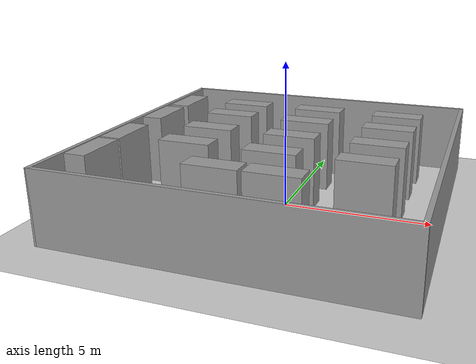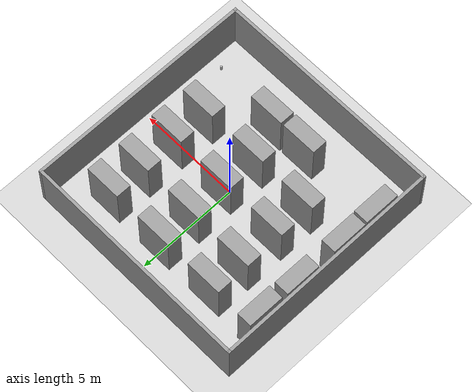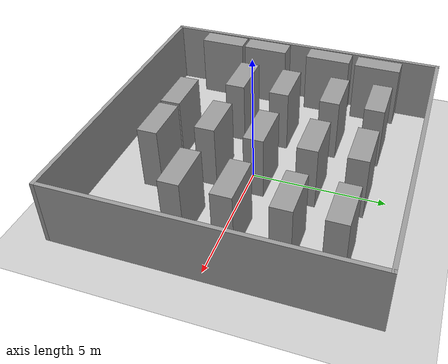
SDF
<sdf version="1.6">
 <world name="default">
  <light name="sun" type="directional">
   <pose>0 0 10 0 -0 0</pose>
   <diffuse>0.8 0.8 0.8 1</diffuse>
   <specular>0.1 0.1 0.1 1</specular>
   <attenuation>
    <range>1000</range>
    <constant>0.9</constant>
    <linear>0.01</linear>
    <quadratic>0.001</quadratic>
   </attenuation>
   <direction>-0.5 0.5 -1</direction>
  </light>
  <model name="ground_plane">
   <static>1</static>
   <link name="link">
    <collision name="collision">
     <geometry><plane><normal>0 0 1</normal><size>100 100</size></plane></geometry>
     <surface><friction><ode><mu>100</mu><mu2>50</mu2></ode></friction></surface>
    </collision>
    <visual name="visual">
     <cast_shadows>0</cast_shadows>
     <geometry><plane><normal>0 0 1</normal><size>100 100</size></plane></geometry>
     <material>
      <script><uri>file://media/materials/scripts/gazebo.material</uri><name>Gazebo/Grey</name></script>
     </material>
    </visual>
   </link>
  </model>
  <gravity>0 0 -9.8</gravity>
  <magnetic_field>6e-06 2.3e-05 -4.2e-05</magnetic_field>
  <atmosphere type="adiabatic"/>
  <physics name="default_physics" default="0" type="ode">
   <max_step_size>0.001</max_step_size>
   <real_time_factor>1</real_time_factor>
   <real_time_update_rate>1000</real_time_update_rate>
  </physics>
  <scene><ambient>0.4 0.4 0.4 1</ambient><background>0.7 0.7 0.7 1</background><shadows>1</shadows></scene>
  <spherical_coordinates>
   <surface_model>EARTH_WGS84</surface_model>
   <latitude_deg>0</latitude_deg>
   <longitude_deg>0</longitude_deg>
   <elevation>0</elevation>
   <heading_deg>0</heading_deg>
  </spherical_coordinates>
  <model name="C205_strict">
   <pose>-0.338529 0.180785 0 0 -0 0</pose>
   <link name="Wall_14">
    <collision name="Wall_14_Collision">
     <geometry><box><size>11.4 0.15 2.5</size></box></geometry>
     <pose>0 0 1.25 0 -0 0</pose>
    </collision>
    <visual name="Wall_14_Visual">
     <pose>0 0 1.25 0 -0 0</pose>
     <geometry><box><size>11.4 0.15 2.5</size></box></geometry>
     <material>
      <script><uri>file://media/materials/scripts/gazebo.material</uri><name>Gazebo/Grey</name></script>
      <ambient>1 1 1 1</ambient>
     </material>
    </visual>
    <pose>5.625 0 0 0 0 -1.5708</pose>
   </link>
   <link name="Wall_16">
    <collision name="Wall_16_Collision">
     <geometry><box><size>11.4 0.15 2.5</size></box></geometry>
     <pose>0 0 1.25 0 -0 0</pose>
    </collision>
    <visual name="Wall_16_Visual">
     <pose>0 0 1.25 0 -0 0</pose>
     <geometry><box><size>11.4 0.15 2.5</size></box></geometry>
     <material>
      <script><uri>file://media/materials/scripts/gazebo.material</uri><name>Gazebo/Grey</name></script>
      <ambient>1 1 1 1</ambient>
     </material>
    </visual>
    <pose>0 5.625 0 0 -0 3.14159</pose>
   </link>
   <link name="Wall_4">
    <collision name="Wall_4_Collision">
     <geometry><box><size>11.4 0.15 2.5</size></box></geometry>
     <pose>0 0 1.25 0 -0 0</pose>
    </collision>
    <visual name="Wall_4_Visual">
     <pose>0 0 1.25 0 -0 0</pose>
     <geometry><box><size>11.4 0.15 2.5</size></box></geometry>
     <material>
      <script><uri>file://media/materials/scripts/gazebo.material</uri><name>Gazebo/Grey</name></script>
      <ambient>1 1 1 1</ambient>
     </material>
    </visual>
    <pose>-5.625 0 0 0 -0 1.5708</pose>
   </link>
   <link name="Wall_9">
    <collision name="Wall_9_Collision">
     <geometry><box><size>11.4 0.15 2.5</size></box></geometry>
     <pose>0 0 1.25 0 -0 0</pose>
    </collision>
    <visual name="Wall_9_Visual">
     <pose>0 0 1.25 0 -0 0</pose>
     <geometry><box><size>11.4 0.15 2.5</size></box></geometry>
     <material>
      <script><uri>file://media/materials/scripts/gazebo.material</uri><name>Gazebo/Grey</name></script>
      <ambient>1 1 1 1</ambient>
     </material>
    </visual>
    <pose>0 -5.625 0 0 -0 0</pose>
   </link>
   <static>1</static>
  </model>
  <model name="C205_desk_0">
   <pose>3.10034 3.98146 0 0 -0 0</pose>
   <link name="Wall_18">
    <collision name="Wall_18_Collision">
     <geometry><box><size>1.8 0.75 2.5</size></box></geometry>
     <pose>0 0 1.25 0 -0 0</pose>
    </collision>
    <visual name="Wall_18_Visual">
     <pose>0 0 1.25 0 -0 0</pose>
     <geometry><box><size>1.8 0.75 2.5</size></box></geometry>
     <material>
      <script><uri>file://media/materials/scripts/gazebo.material</uri><name>Gazebo/Grey</name></script>
      <ambient>1 1 1 1</ambient>
     </material>
    </visual>
   </link>
   <static>1</static>
  </model>
  <model name="C205_desk_0_clone">
   <pose>3.08249 2.2509 0 0 -0 0</pose>
   <link name="Wall_18">
    <collision name="Wall_18_Collision">
     <geometry><box><size>1.8 0.75 2.5</size></box></geometry>
     <pose>0 0 1.25 0 -0 0</pose>
    </collision>
    <visual name="Wall_18_Visual">
     <pose>0 0 1.25 0 -0 0</pose>
     <geometry><box><size>1.8 0.75 2.5</size></box></geometry>
     <material>
      <script><uri>file://media/materials/scripts/gazebo.material</uri><name>Gazebo/Grey</name></script>
      <ambient>1 1 1 1</ambient>
     </material>
    </visual>
   </link>
   <static>1</static>
  </model>
  <model name="C205_desk_0_clone_0">
   <pose>3.10552 0.334193 0 0 -0 0</pose>
   <link name="Wall_18">
    <collision name="Wall_18_Collision">
     <geometry><box><size>1.8 0.75 2.5</size></box></geometry>
     <pose>0 0 1.25 0 -0 0</pose>
    </collision>
    <visual name="Wall_18_Visual">
     <pose>0 0 1.25 0 -0 0</pose>
     <geometry><box><size>1.8 0.75 2.5</size></box></geometry>
     <material>
      <script><uri>file://media/materials/scripts/gazebo.material</uri><name>Gazebo/Grey</name></script>
      <ambient>1 1 1 1</ambient>
     </material>
    </visual>
   </link>
   <static>1</static>
  </model>
  <model name="C205_desk_0_clone_1">
   <pose>3.07463 -1.44968 0 0 -0 0</pose>
   <link name="Wall_18">
    <collision name="Wall_18_Collision">
     <geometry><box><size>1.8 0.75 2.5</size></box></geometry>
     <pose>0 0 1.25 0 -0 0</pose>
    </collision>
    <visual name="Wall_18_Visual">
     <pose>0 0 1.25 0 -0 0</pose>
     <geometry><box><size>1.8 0.75 2.5</size></box></geometry>
     <material>
      <script><uri>file://media/materials/scripts/gazebo.material</uri><name>Gazebo/Grey</name></script>
      <ambient>1 1 1 1</ambient>
     </material>
    </visual>
   </link>
   <static>1</static>
  </model>
  <model name="C205_desk_0_clone_2">
   <pose>0.052321 3.97932 0 0 -0 0</pose>
   <link name="Wall_18">
    <collision name="Wall_18_Collision">
     <geometry><box><size>1.8 0.75 2.5</size></box></geometry>
     <pose>0 0 1.25 0 -0 0</pose>
    </collision>
    <visual name="Wall_18_Visual">
     <pose>0 0 1.25 0 -0 0</pose>
     <geometry><box><size>1.8 0.75 2.5</size></box></geometry>
     <material>
      <script><uri>file://media/materials/scripts/gazebo.material</uri><name>Gazebo/Grey</name></script>
      <ambient>1 1 1 1</ambient>
     </material>
    </visual>
   </link>
   <static>1</static>
  </model>
  <model name="C205_desk_0_clone_3">
   <pose>0.061092 2.2489 0 0 -0 0</pose>
   <link name="Wall_18">
    <collision name="Wall_18_Collision">
     <geometry><box><size>1.8 0.75 2.5</size></box></geometry>
     <pose>0 0 1.25 0 -0 0</pose>
    </collision>
    <visual name="Wall_18_Visual">
     <pose>0 0 1.25 0 -0 0</pose>
     <geometry><box><size>1.8 0.75 2.5</size></box></geometry>
     <material>
      <script><uri>file://media/materials/scripts/gazebo.material</uri><name>Gazebo/Grey</name></script>
      <ambient>1 1 1 1</ambient>
     </material>
    </visual>
   </link>
   <static>1</static>
  </model>
  <model name="C205_desk_0_clone_4">
   <pose>0.11067 0.345636 0 0 -0 0</pose>
   <link name="Wall_18">
    <collision name="Wall_18_Collision">
     <geometry><box><size>1.8 0.75 2.5</size></box></geometry>
     <pose>0 0 1.25 0 -0 0</pose>
    </collision>
    <visual name="Wall_18_Visual">
     <pose>0 0 1.25 0 -0 0</pose>
     <geometry><box><size>1.8 0.75 2.5</size></box></geometry>
     <material>
      <script><uri>file://media/materials/scripts/gazebo.material</uri><name>Gazebo/Grey</name></script>
      <ambient>1 1 1 1</ambient>
     </material>
    </visual>
   </link>
   <static>1</static>
  </model>
  <model name="C205_desk_0_clone_5">
   <pose>0.066675 -1.47823 0 0 -0 0</pose>
   <link name="Wall_18">
    <collision name="Wall_18_Collision">
     <geometry><box><size>1.8 0.75 2.5</size></box></geometry>
     <pose>0 0 1.25 0 -0 0</pose>
    </collision>
    <visual name="Wall_18_Visual">
     <pose>0 0 1.25 0 -0 0</pose>
     <geometry><box><size>1.8 0.75 2.5</size></box></geometry>
     <material>
      <script><uri>file://media/materials/scripts/gazebo.material</uri><name>Gazebo/Grey</name></script>
      <ambient>1 1 1 1</ambient>
     </material>
    </visual>
   </link>
   <static>1</static>
  </model>
  <model name="C205_desk_0_clone_6">
   <pose>-2.92908 3.96421 0 0 -0 0</pose>
   <link name="Wall_18">
    <collision name="Wall_18_Collision">
     <geometry><box><size>1.8 0.75 2.5</size></box></geometry>
     <pose>0 0 1.25 0 -0 0</pose>
    </collision>
    <visual name="Wall_18_Visual">
     <pose>0 0 1.25 0 -0 0</pose>
     <geometry><box><size>1.8 0.75 2.5</size></box></geometry>
     <material>
      <script><uri>file://media/materials/scripts/gazebo.material</uri><name>Gazebo/Grey</name></script>
      <ambient>1 1 1 1</ambient>
     </material>
    </visual>
   </link>
   <static>1</static>
  </model>
  <model name="C205_desk_0_clone_7">
   <pose>-2.92058 2.28703 0 0 -0 0</pose>
   <link name="Wall_18">
    <collision name="Wall_18_Collision">
     <geometry><box><size>1.8 0.75 2.5</size></box></geometry>
     <pose>0 0 1.25 0 -0 0</pose>
    </collision>
    <visual name="Wall_18_Visual">
     <pose>0 0 1.25 0 -0 0</pose>
     <geometry><box><size>1.8 0.75 2.5</size></box></geometry>
     <material>
      <script><uri>file://media/materials/scripts/gazebo.material</uri><name>Gazebo/Grey</name></script>
      <ambient>1 1 1 1</ambient>
     </material>
    </visual>
   </link>
   <static>1</static>
  </model>
  <model name="C205_desk_0_clone_8">
   <pose>-2.89735 0.330387 0 0 -0 0</pose>
   <link name="Wall_18">
    <collision name="Wall_18_Collision">
     <geometry><box><size>1.8 0.75 2.5</size></box></geometry>
     <pose>0 0 1.25 0 -0 0</pose>
    </collision>
    <visual name="Wall_18_Visual">
     <pose>0 0 1.25 0 -0 0</pose>
     <geometry><box><size>1.8 0.75 2.5</size></box></geometry>
     <material>
      <script><uri>file://media/materials/scripts/gazebo.material</uri><name>Gazebo/Grey</name></script>
      <ambient>1 1 1 1</ambient>
     </material>
    </visual>
   </link>
   <static>1</static>
  </model>
  <model name="C205_desk_0_clone_9">
   <pose>-2.90169 -1.44004 0 0 -0 0</pose>
   <link name="Wall_18">
    <collision name="Wall_18_Collision">
     <geometry><box><size>1.8 0.75 2.5</size></box></geometry>
     <pose>0 0 1.25 0 -0 0</pose>
    </collision>
    <visual name="Wall_18_Visual">
     <pose>0 0 1.25 0 -0 0</pose>
     <geometry><box><size>1.8 0.75 2.5</size></box></geometry>
     <material>
      <script><uri>file://media/materials/scripts/gazebo.material</uri><name>Gazebo/Grey</name></script>
      <ambient>1 1 1 1</ambient>
     </material>
    </visual>
   </link>
   <static>1</static>
  </model>
  <model name="C205_desk_0_clone_10">
   <pose>0.834644 -3.31131 0 0 -0 0</pose>
   <link name="Wall_18">
    <collision name="Wall_18_Collision">
     <geometry><box><size>1.8 0.75 2.5</size></box></geometry>
     <pose>0 0 1.25 0 -0 0</pose>
    </collision>
    <visual name="Wall_18_Visual">
     <pose>0 0 1.25 0 -0 0</pose>
     <geometry><box><size>1.8 0.75 2.5</size></box></geometry>
     <material>
      <script><uri>file://media/materials/scripts/gazebo.material</uri><name>Gazebo/Grey</name></script>
      <ambient>1 1 1 1</ambient>
     </material>
    </visual>
   </link>
   <static>1</static>
  </model>
  <model name="C205_desk_0_clone_11">
   <pose>-1.09527 -3.32108 0 0 -0 0</pose>
   <link name="Wall_18">
    <collision name="Wall_18_Collision">
     <geometry><box><size>1.8 0.75 2.5</size></box></geometry>
     <pose>0 0 1.25 0 -0 0</pose>
    </collision>
    <visual name="Wall_18_Visual">
     <pose>0 0 1.25 0 -0 0</pose>
     <geometry><box><size>1.8 0.75 2.5</size></box></geometry>
     <material>
      <script><uri>file://media/materials/scripts/gazebo.material</uri><name>Gazebo/Grey</name></script>
      <ambient>1 1 1 1</ambient>
     </material>
    </visual>
   </link>
   <static>1</static>
  </model>
  <model name="C205_desk_0_clone_12">
   <pose>-5.44867 -3.13018 0 0 0 -1.57622</pose>
   <link name="Wall_18">
    <collision name="Wall_18_Collision">
     <geometry><box><size>1.8 0.75 2.5</size></box></geometry>
     <pose>0 0 1.25 0 -0 0</pose>
    </collision>
    <visual name="Wall_18_Visual">
     <pose>0 0 1.25 0 -0 0</pose>
     <geometry><box><size>1.8 0.75 2.5</size></box></geometry>
     <material>
      <script><uri>file://media/materials/scripts/gazebo.material</uri><name>Gazebo/Grey</name></script>
      <ambient>1 1 1 1</ambient>
     </material>
    </visual>
   </link>
   <static>1</static>
  </model>
  <model name="C205_desk_0_clone_12_clone">
   <pose>-5.45832 -1.2267 0 0 0 -1.57622</pose>
   <link name="Wall_18">
    <collision name="Wall_18_Collision">
     <geometry><box><size>1.8 0.75 2.5</size></box></geometry>
     <pose>0 0 1.25 0 -0 0</pose>
    </collision>
    <visual name="Wall_18_Visual">
     <pose>0 0 1.25 0 -0 0</pose>
     <geometry><box><size>1.8 0.75 2.5</size></box></geometry>
     <material>
      <script><uri>file://media/materials/scripts/gazebo.material</uri><name>Gazebo/Grey</name></script>
      <ambient>1 1 1 1</ambient>
     </material>
    </visual>
   </link>
   <static>1</static>
  </model>
  <model name="C205_desk_0_clone_12_clone_0">
   <pose>-5.45871 1.47549 0 0 0 -1.57622</pose>
   <link name="Wall_18">
    <collision name="Wall_18_Collision">
     <geometry><box><size>1.8 0.75 2.5</size></box></geometry>
     <pose>0 0 1.25 0 -0 0</pose>
    </collision>
    <visual name="Wall_18_Visual">
     <pose>0 0 1.25 0 -0 0</pose>
     <geometry><box><size>1.8 0.75 2.5</size></box></geometry>
     <material>
      <script><uri>file://media/materials/scripts/gazebo.material</uri><name>Gazebo/Grey</name></script>
      <ambient>1 1 1 1</ambient>
     </material>
    </visual>
   </link>
   <static>1</static>
  </model>
  <model name="C205_desk_0_clone_12_clone_1">
   <pose>-5.40255 3.52571 0 0 0 -1.57622</pose>
   <link name="Wall_18">
    <collision name="Wall_18_Collision">
     <geometry><box><size>1.8 0.75 2.5</size></box></geometry>
     <pose>0 0 1.25 0 -0 0</pose>
    </collision>
    <visual name="Wall_18_Visual">
     <pose>0 0 1.25 0 -0 0</pose>
     <geometry><box><size>1.8 0.75 2.5</size></box></geometry>
     <material>
      <script><uri>file://media/materials/scripts/gazebo.material</uri><name>Gazebo/Grey</name></script>
      <ambient>1 1 1 1</ambient>
     </material>
    </visual>
   </link>
   <static>1</static>
  </model>
  <model name="beer">
   <link name="link">
    <pose>0 0 0.115 0 -0 0</pose>
    <inertial>
     <mass>0.39</mass>
     <inertia><ixx>0.00058</ixx><ixy>0</ixy><ixz>0</ixz><iyy>0.00058</iyy><iyz>0</iyz><izz>0.00019</izz></inertia>
    </inertial>
    <collision name="collision">
     <geometry><cylinder><radius>0.055</radius><length>0.23</length></cylinder></geometry>
    </collision>
    <visual name="visual">
     <geometry><cylinder><radius>0.055</radius><length>0.23</length></cylinder></geometry>
     <material>
      <script>
       <uri>model://beer/materials/scripts</uri>
       <uri>model://beer/materials/textures</uri>
       <name>Beer/Diffuse</name>
      </script>
     </material>
    </visual>
   </link>
   <pose>4.60808 -3.92731 -8e-06 -1e-06 -0 -4e-06</pose>
  </model>
 </world>
</sdf>
